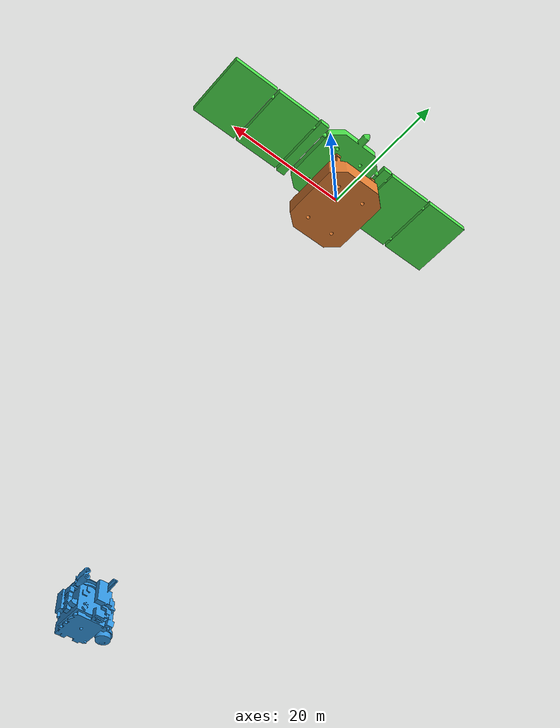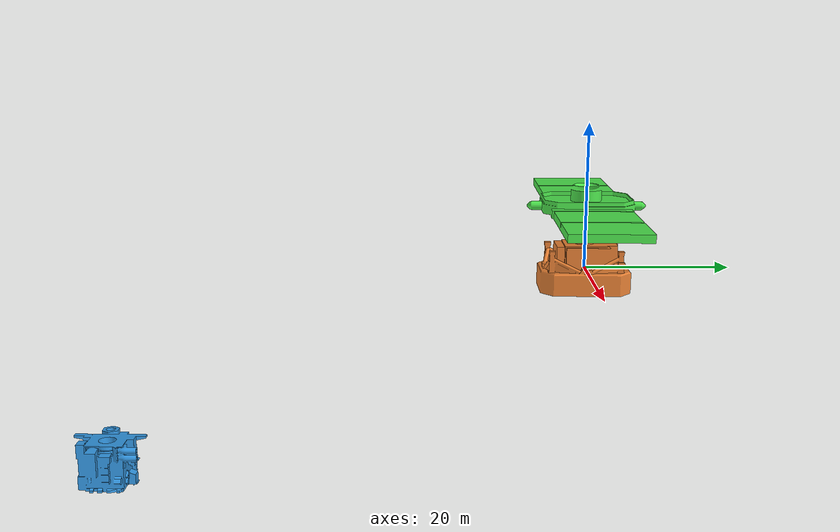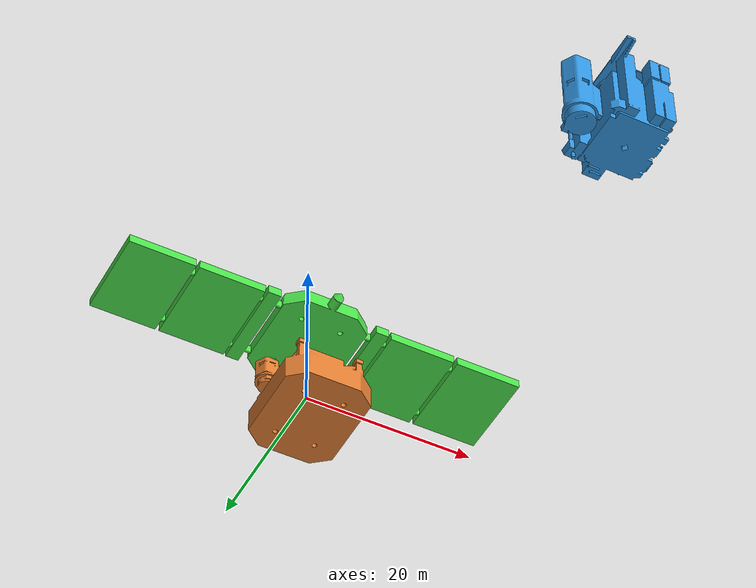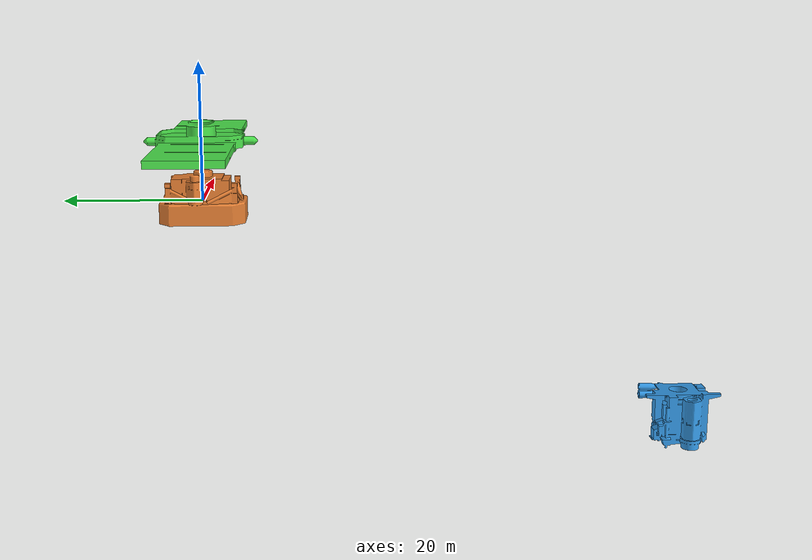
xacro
<?xml version="1.0"?>
<robot xmlns:xacro="http://www.ros.org/wiki/xacro" name="soho_preview">

  <!-- Invisible base link -->
  <link name="base_link">
    <visual>
      <origin xyz="0 0 0"/>
      <geometry><box size="0.001 0.001 0.001"/></geometry>
      <material name="invisible">
        <color rgba="0 0 0 0"/>
      </material>
    </visual>
    <inertial>
      <mass value="0.01"/>
      <inertia ixx="1e-6" ixy="0" ixz="0" iyy="1e-6" iyz="0" izz="1e-6"/>
    </inertial>
  </link>

  <!-- Body 1 (upper body) -->
  <link name="body1">
    <visual>
      <origin xyz="-21.0 -22.9 -12.7" rpy="0 0 0"/>
      <geometry>
        <mesh filename="model://nbv_space/meshes/SOHO_Body1_20thScale.stl" scale="0.1 0.1 0.1"/>
      </geometry>
      <material name="orange"><color rgba="0.9 0.5 0.2 1"/></material>
    </visual>
    <inertial>
      <mass value="1.0"/>
      <inertia ixx="1e-3" ixy="0" ixz="0" iyy="1e-3" iyz="0" izz="1e-3"/>
    </inertial>
  </link>

  <!-- Joint: base_link → body1 -->
  <joint name="joint_base_to_body1" type="revolute">
    <parent link="base_link"/>
    <child link="body1"/>
    <origin xyz="0 0 0" rpy="0 0 0"/>
    <axis xyz="0 0 1"/>
    <limit lower="0" upper="0" effort="0" velocity="0"/>
  </joint>

  <!-- Body 2 (lower body, flipped upside down) -->
  <link name="body2">
    <visual>
      <!-- flipped 180° about x -->
      <origin xyz="-25.0 -50.0 -15.0" rpy="3.1416 0 0"/>
      <geometry>
        <mesh filename="model://nbv_space/meshes/SOHO_Body2_20thScale.stl" scale="0.1 0.1 0.1"/>
      </geometry>
      <material name="blue"><color rgba="0.2 0.6 0.9 1"/></material>
    </visual>
    <inertial>
      <mass value="1.0"/>
      <inertia ixx="1e-3" ixy="0" ixz="0" iyy="1e-3" iyz="0" izz="1e-3"/>
    </inertial>
  </link>

  <!-- Joint: body1 → body2 (stacked, z-aligned, faces touching) -->
  <joint name="joint_body1_to_body2" type="revolute">
    <parent link="body1"/>
    <child link="body2"/>
    <!-- Assuming each body is about 3 units tall in your mesh scale -->
    <origin xyz="0 0 -3.0" rpy="0 0 0"/>
    <axis xyz="0 0 1"/>
    <limit lower="0" upper="0" effort="0" velocity="0"/>
  </joint>

  <!-- Panel (on top of body1) -->
  <link name="panel">
    <visual>
      <origin xyz="0 0 0" rpy="0 0 0"/>
      <geometry>
        <mesh filename="model://nbv_space/meshes/SOHO_Panel_20thScale.stl" scale="0.1 0.1 0.1"/>
      </geometry>
      <material name="green"><color rgba="0.3 0.9 0.3 1"/></material>
    </visual>
    <inertial>
      <mass value="0.5"/>
      <inertia ixx="5e-4" ixy="0" ixz="0" iyy="5e-4" iyz="0" izz="5e-4"/>
    </inertial>
  </link>

  <!-- Joint: body1 → panel (on top) -->
  <joint name="joint_body1_to_panel" type="revolute">
    <parent link="body1"/>
    <child link="panel"/>
    <origin xyz="0 0 3.0" rpy="0 0 0"/>
    <axis xyz="0 0 1"/>
    <limit lower="0" upper="0" effort="0" velocity="0"/>
  </joint>

</robot>
